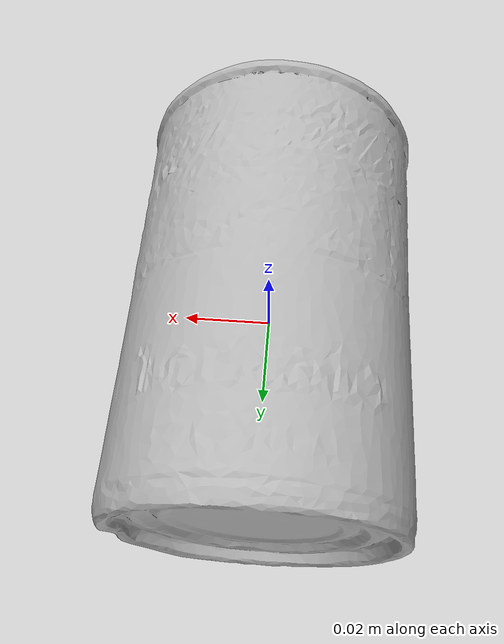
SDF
<?xml version="1.0"?>
<sdf version="1.7">
  <model name="005_tomato_soup_can">
    <link name="base_link_soup">
      <inertial>
        <mass>0.349000</mass>
        <inertia>
          <ixx>0.000402</ixx>
          <ixy>0</ixy>
          <ixz>0</ixz>
          <iyy>0.000200</iyy>
          <iyz>0</iyz>
          <izz>0.000402</izz>
        </inertia>
      </inertial>
      <visual name="base_link_soup">
        <pose>-0.0018  0.051 -0.084 1.57 0.13 0.0</pose>
        <geometry>
          <mesh>
            <uri>package://drake_models/ycb/meshes/005_tomato_soup_can_textured.gltf</uri>
          </mesh>
        </geometry>
      </visual>
      <collision name="box_collision">
        <pose>0 0 0 -1.57 0 0</pose>
        <geometry>
          <cylinder>
            <radius>0.031850</radius>
            <length>0.099900</length>
          </cylinder>
        </geometry>
      </collision>
      <collision name="point_collision1">
        <pose>0.016425 0.050450 0.016425 0 0 0 </pose>
        <geometry>
          <sphere>
            <radius>1e-7</radius>
          </sphere>
        </geometry>
      </collision>
      <collision name="point_collision2">
        <pose>0.016425 -0.050450 0.016425 0 0 0 </pose>
        <geometry>
          <sphere>
            <radius>1e-7</radius>
          </sphere>
        </geometry>
      </collision>
      <collision name="point_collision3">
        <pose>-0.016425 0.050450 0.016425 0 0 0 </pose>
        <geometry>
          <sphere>
            <radius>1e-7</radius>
          </sphere>
        </geometry>
      </collision>
      <collision name="point_collision4">
        <pose>-0.016425 -0.050450 0.016425 0 0 0 </pose>
        <geometry>
          <sphere>
            <radius>1e-7</radius>
          </sphere>
        </geometry>
      </collision>
      <collision name="point_collision5">
        <pose>0.016425 0.050450 -0.016425 0 0 0 </pose>
        <geometry>
          <sphere>
            <radius>1e-7</radius>
          </sphere>
        </geometry>
      </collision>
      <collision name="point_collision6">
        <pose>0.016425 -0.050450 -0.016425 0 0 0 </pose>
        <geometry>
          <sphere>
            <radius>1e-7</radius>
          </sphere>
        </geometry>
      </collision>
      <collision name="point_collision7">
        <pose>-0.016425 0.050450 -0.016425 0 0 0 </pose>
        <geometry>
          <sphere>
            <radius>1e-7</radius>
          </sphere>
        </geometry>
      </collision>
      <collision name="point_collision8">
        <pose>-0.016425 -0.050450 -0.016425 0 0 0 </pose>
        <geometry>
          <sphere>
            <radius>1e-7</radius>
          </sphere>
        </geometry>
      </collision>
    </link>
  </model>
</sdf>
